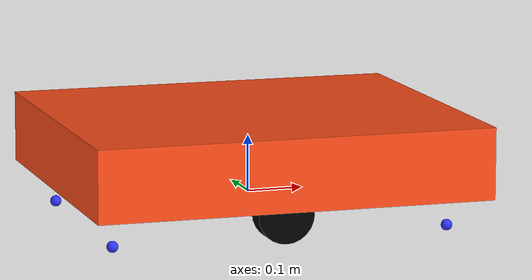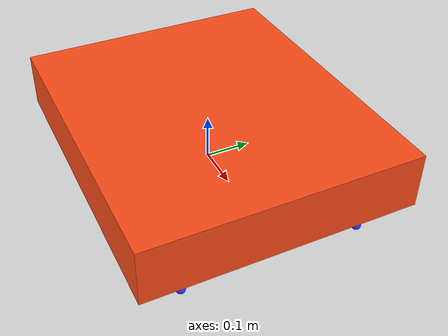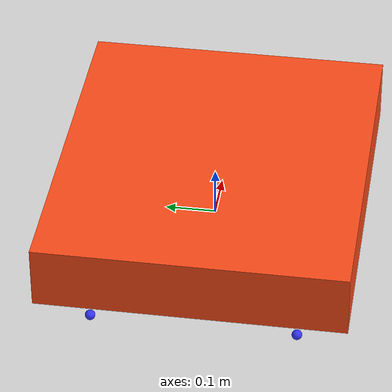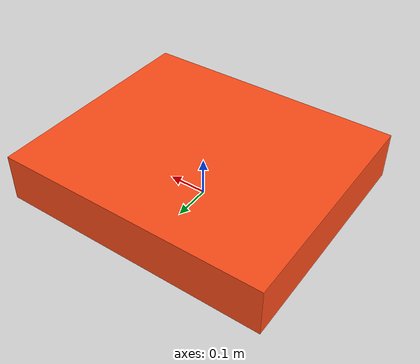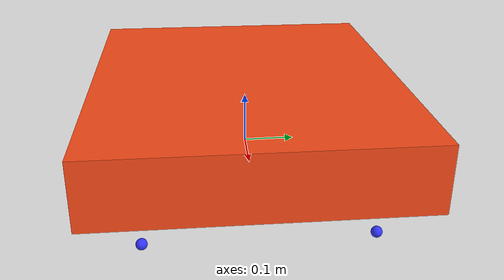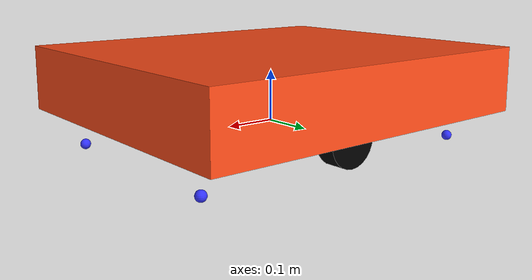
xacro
<?xml version="1.0"?>
<robot xmlns:xacro="http://www.ros.org/wiki/xacro">

    <xacro:include filename="inertial_macros.xacro" />

    <xacro:property name="chassis_length"   value="0.70" />
    <xacro:property name="chassis_width"    value="0.60" />
    <xacro:property name="chassis_height"   value="0.126" />
    <xacro:property name="chassis_mass"     value="1.5" />
    <xacro:property name="wheel_radius"     value="0.05" />
    <xacro:property name="wheel_thickness"  value="0.04" />
    <xacro:property name="wheel_mass"       value="0.05" />
    <xacro:property name="wheel_offset_x"   value="0.35" />
    <xacro:property name="wheel_offset_y"   value="0.205" />
    <xacro:property name="wheel_offset_z"   value="-0.02" />

    <xacro:property name="caster_wheel_radius"      value="0.01" />
    <xacro:property name="caster_wheel_mass"        value="0.1" />
    <xacro:property name="caster_wheel_offset_x"    value="0.02" />
    <xacro:property name="caster_wheel_offset_z"    value="${wheel_offset_z - wheel_radius + caster_wheel_radius}" />

    <material name="white">
        <color rgba="1 1 1 1" />
    </material>

    <material name="orange">
        <color rgba="1 0.3 0.1 1" />
    </material>

    <material name="blue">
        <color rgba="0.2 0.2 1 1" />
    </material>

    <material name="black">
        <color rgba="0 0 0 1" />
    </material>

    <material name="red">
        <color rgba="1 0 0 1" />
    </material>

    <!-- BASE LINK -->

    <link name="base_link">

    </link>

    <!-- BASE_FOOTPRINT LINK -->

    <joint name="base_footprint_joint" type="fixed">
        <parent link="base_link" />
        <child link="base_footprint" />
        <origin xyz="0 0 0" rpy="0 0 0" />
    </joint>

    <link name="base_footprint">

    </link>

    <!-- CHASSIS LINK -->

    <joint name="chassis_joint" type="fixed">
        <parent link="base_link" />
        <child link="chassis" />
        <origin xyz="${-wheel_offset_x} 0 ${-wheel_offset_z}" />
    </joint>

    <link name="chassis">
        <visual>
            <origin xyz="${chassis_length/2} 0 ${chassis_height/2}" />
            <geometry>
                <box size="${chassis_length} ${chassis_width} ${chassis_height}" />
            </geometry>
            <material name="orange" />
        </visual>
        <collision>
            <origin xyz="${chassis_length/2} 0 ${chassis_height/2}" />
            <geometry>
                <box size="${chassis_length} ${chassis_width} ${chassis_height}" />
            </geometry>
        </collision>
        <xacro:inertial_box mass="0.5" x="${chassis_length}" y="${chassis_width}"
            z="${chassis_height}">
            <origin xyz="${chassis_length/2} 0 ${chassis_height/2}" rpy="0 0 0" />
        </xacro:inertial_box>
    </link>

    <gazebo reference="chassis">
        <material>Gazebo/Orange</material>
    </gazebo>

    <!-- LEFT WHEEL LINK -->

    <joint name="left_wheel_joint" type="continuous">
        <parent link="base_link" />
        <child link="left_wheel" />
        <origin xyz="0 ${wheel_offset_y} 0" rpy="-${pi/2} 0 0" />
        <axis xyz="0 0 1" />
    </joint>

    <link name="left_wheel">
        <visual>
            <geometry>
                <cylinder radius="${wheel_radius}" length="${wheel_thickness}" />
            </geometry>
            <material name="black" />
        </visual>
        <collision>
            <geometry>
                <sphere radius="${wheel_radius}" />
            </geometry>
        </collision>
        <xacro:inertial_cylinder mass="${wheel_mass}" length="${wheel_thickness}"
            radius="${wheel_radius}">
            <origin xyz="0 0 0" rpy="0 0 0" />
        </xacro:inertial_cylinder>
    </link>

    <gazebo reference="left_wheel">
        <material>Gazebo/Black</material>
    </gazebo>

    <!-- RIGHT WHEEL LINK -->

    <joint name="right_wheel_joint" type="continuous">
        <parent link="base_link" />
        <child link="right_wheel" />
        <origin xyz="0 ${-wheel_offset_y} 0" rpy="${pi/2} 0 0" />
        <axis xyz="0 0 -1" />
    </joint>

    <link name="right_wheel">
        <visual>
            <geometry>
                <cylinder radius="${wheel_radius}" length="${wheel_thickness}" />
            </geometry>
            <material name="black" />
        </visual>
        <collision>
            <geometry>
                <sphere radius="${wheel_radius}" />
            </geometry>
        </collision>
        <xacro:inertial_cylinder mass="${wheel_mass}" length="${wheel_thickness}"
            radius="${wheel_radius}">
            <origin xyz="0 0 0" rpy="0 0 0" />
        </xacro:inertial_cylinder>
    </link>

    <gazebo reference="right_wheel">
        <material>Gazebo/Black</material>
    </gazebo>

    <!-- CASTER WHEEL LINK -->
    <!-- WHEEL LINK == 1 -->

    <joint name="caster1_wheel_joint" type="fixed">
        <parent link="chassis" />
        <child link="caster1_wheel" />
        <origin xyz="0.05 0.2 ${caster_wheel_offset_z}" />
    </joint>
    <link name="caster1_wheel">
        <visual>
            <geometry>
                <sphere radius="${caster_wheel_radius}" />
            </geometry>
            <material name="blue" />
        </visual>
        <collision>
            <geometry>
                <sphere radius="${caster_wheel_radius}" />
            </geometry>
        </collision>
        <xacro:inertial_sphere mass="${caster_wheel_mass}" radius="${caster_wheel_radius}">
            <origin xyz="0 0 0" rpy="0 0 0" />
        </xacro:inertial_sphere>
    </link>
    <gazebo reference="caster1_wheel">
        <material>Gazebo/Blue</material>
        <mu1 value="0.001" />
        <mu2 value="0.001" />
    </gazebo>

    <!-- WHEEL LINK == 2 -->

    <joint name="caster2_wheel_joint" type="fixed">
        <parent link="chassis" />
        <child link="caster2_wheel" />
        <origin xyz="0.05 -0.2 ${caster_wheel_offset_z}" />
    </joint>
    <link name="caster2_wheel">
        <visual>
            <geometry>
                <sphere radius="${caster_wheel_radius}" />
            </geometry>
            <material name="blue" />
        </visual>
        <collision>
            <geometry>
                <sphere radius="${caster_wheel_radius}" />
            </geometry>
        </collision>
        <xacro:inertial_sphere mass="${caster_wheel_mass}" radius="${caster_wheel_radius}">
            <origin xyz="0 0 0" rpy="0 0 0" />
        </xacro:inertial_sphere>
    </link>
    <gazebo reference="caster2_wheel">
        <material>Gazebo/Blue</material>
        <mu1 value="0.001" />
        <mu2 value="0.001" />
    </gazebo>

    <!-- WHEEL LINK == 3 -->

    <joint name="caster3_wheel_joint" type="fixed">
        <parent link="chassis" />
        <child link="caster3_wheel" />
        <origin xyz="0.65 -0.2 ${caster_wheel_offset_z}" />
    </joint>
    <link name="caster3_wheel">
        <visual>
            <geometry>
                <sphere radius="${caster_wheel_radius}" />
            </geometry>
            <material name="blue" />
        </visual>
        <collision>
            <geometry>
                <sphere radius="${caster_wheel_radius}" />
            </geometry>
        </collision>
        <xacro:inertial_sphere mass="${caster_wheel_mass}" radius="${caster_wheel_radius}">
            <origin xyz="0 0 0" rpy="0 0 0" />
        </xacro:inertial_sphere>
    </link>
    <gazebo reference="caster3_wheel">
        <material>Gazebo/Blue</material>
        <mu1 value="0.001" />
        <mu2 value="0.001" />
    </gazebo>

    <!-- WHEEL LINK == 4 -->

    <joint name="caster4_wheel_joint" type="fixed">
        <parent link="chassis" />
        <child link="caster4_wheel" />
        <origin xyz="0.65 0.2 ${caster_wheel_offset_z}" />
    </joint>
    <link name="caster4_wheel">
        <visual>
            <geometry>
                <sphere radius="${caster_wheel_radius}" />
            </geometry>
            <material name="blue" />
        </visual>
        <collision>
            <geometry>
                <sphere radius="${caster_wheel_radius}" />
            </geometry>
        </collision>
        <xacro:inertial_sphere mass="${caster_wheel_mass}" radius="${caster_wheel_radius}">
            <origin xyz="0 0 0" rpy="0 0 0" />
        </xacro:inertial_sphere>
    </link>
    <gazebo reference="caster4_wheel">
        <material>Gazebo/Blue</material>
        <mu1 value="0.001" />
        <mu2 value="0.001" />
    </gazebo>

</robot>

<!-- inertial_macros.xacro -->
<robot xmlns:xacro="http://www.ros.org/wiki/xacro">

    <!-- Specify some standard inertial calculations
    https://en.wikipedia.org/wiki/List_of_moments_of_inertia -->
    <!-- These make use of xacro's mathematical functionality -->

    <xacro:macro name="inertial_sphere" params="mass radius *origin">
        <inertial>
            <xacro:insert_block name="origin" />
            <mass value="${mass}" />
            <inertia ixx="${(2/5) * mass * (radius*radius)}" ixy="0.0" ixz="0.0"
                iyy="${(2/5) * mass * (radius*radius)}" iyz="0.0"
                izz="${(2/5) * mass * (radius*radius)}" />
        </inertial>
    </xacro:macro>

    <xacro:macro name="inertial_box" params="mass x y z *origin">
        <inertial>
            <xacro:insert_block name="origin" />
            <mass value="${mass}" />
            <inertia ixx="${(1/12) * mass * (y*y+z*z)}" ixy="0.0" ixz="0.0"
                iyy="${(1/12) * mass * (x*x+z*z)}" iyz="0.0"
                izz="${(1/12) * mass * (x*x+y*y)}" />
        </inertial>
    </xacro:macro>

    <xacro:macro name="inertial_cylinder" params="mass length radius *origin">
        <inertial>
            <xacro:insert_block name="origin" />
            <mass value="${mass}" />
            <inertia ixx="${(1/12) * mass * (3*radius*radius + length*length)}" ixy="0.0" ixz="0.0"
                iyy="${(1/12) * mass * (3*radius*radius + length*length)}" iyz="0.0"
                izz="${(1/2) * mass * (radius*radius)}" />
        </inertial>
    </xacro:macro>

</robot>
